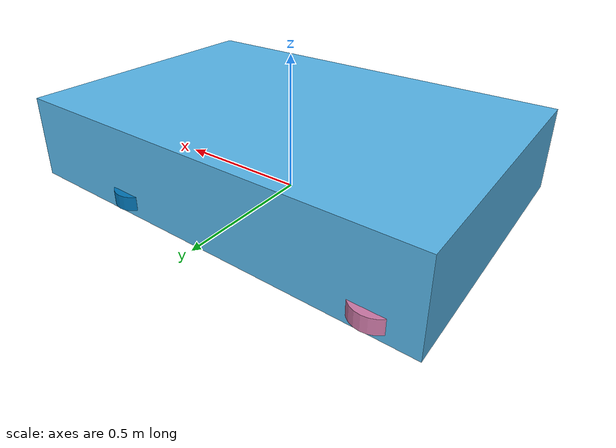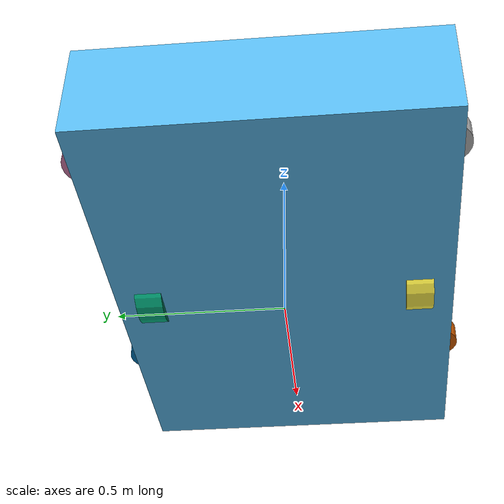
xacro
<?xml version="1.0"?>
<robot xmlns:xacro="http://www.ros.org/wiki/xacro"
       name="amr">

  <!-- Phase 2.1 / 2.2 physical dimensions -->
  <xacro:property name="chassis_length" value="1.500"/>
  <xacro:property name="chassis_width"  value="1.000"/>
  <xacro:property name="chassis_height" value="0.300"/>
  <xacro:property name="ground_clearance" value="0.025"/>

  <!-- Drive wheel dimensions -->
  <xacro:property name="wheel_radius" value="0.125"/>
  <xacro:property name="wheel_width" value="0.080"/>
  <xacro:property name="wheel_separation" value="0.800"/>
  <xacro:property name="drive_axle_x" value="0.000"/>

<!-- Primary robot reference frame -->
  <!-- Origin: drive axle centerline, ground reference -->
  <link name="base_link"/>

  <!-- Main chassis -->
  <link name="chassis_link">
    <inertial>
  <origin xyz="0.008929 0 0.166295"
          rpy="0 0 0"/>
  <mass value="112.0"/>
  <inertia
    ixx="5.445471"
    ixy="0.0"
    ixz="-0.252455"
    iyy="11.390709"
    iyz="0.0"
    izz="15.111905"/>
</inertial>
    <visual>
      <origin xyz="0 0 ${ground_clearance + chassis_height / 2}"
              rpy="0 0 0"/>
      <geometry>
        <box size="${chassis_length}
                   ${chassis_width}
                   ${chassis_height}"/>
      </geometry>
    </visual>

    <collision>
      <origin xyz="0 0 ${ground_clearance + chassis_height / 2}"
              rpy="0 0 0"/>
      <geometry>
        <box size="${chassis_length}
                   ${chassis_width}
                   ${chassis_height}"/>
      </geometry>
    </collision>
  </link>

  <!-- Fixed base-to-chassis connection -->
  <joint name="base_to_chassis"
         type="fixed">
    <parent link="base_link"/>
    <child link="chassis_link"/>
    <origin xyz="0 0 0" rpy="0 0 0"/>
  </joint>

  <!-- Left drive wheel -->
  <link name="left_wheel_link">
     <inertial>
  <origin xyz="0 0 0"
          rpy="0 0 0"/>
  <mass value="15.0"/>
  <inertia
    ixx="0.066594"
    ixy="0.0"
    ixz="0.0"
    iyy="0.117188"
    iyz="0.0"
    izz="0.066594"/>
</inertial>
    <visual>
      <origin xyz="0 0 0" rpy="1.57079632679 0 0"/>
      <geometry>
        <cylinder radius="${wheel_radius}"
                  length="${wheel_width}"/>
      </geometry>
    </visual>

    <collision>
      <origin xyz="0 0 0" rpy="0 0 0"/>
      <geometry>
        <sphere radius="${wheel_radius}"/>
      </geometry>
    </collision>
  </link>

  <joint name="left_wheel_joint"
         type="continuous">
    <parent link="base_link"/>
    <child link="left_wheel_link"/>
    <origin xyz="${drive_axle_x}
                 ${wheel_separation / 2}
                 ${wheel_radius}"
            rpy="0 0 0"/>
    <axis xyz="0 1 0"/>
  </joint>

  <!-- Right drive wheel -->
  <link name="right_wheel_link">
    <inertial>
  <origin xyz="0 0 0"
          rpy="0 0 0"/>
  <mass value="15.0"/>
  <inertia
    ixx="0.066594"
    ixy="0.0"
    ixz="0.0"
    iyy="0.117188"
    iyz="0.0"
    izz="0.066594"/>
</inertial>
    <visual>
      <origin xyz="0 0 0" rpy="1.57079632679 0 0"/>
      <geometry>
        <cylinder radius="${wheel_radius}"
                  length="${wheel_width}"/>
      </geometry>
    </visual>

    <collision>
      <origin xyz="0 0 0" rpy="0 0 0"/>
      <geometry>
        <sphere radius="${wheel_radius}"/>
      </geometry>
    </collision>
  </link>

  <joint name="right_wheel_joint"
         type="continuous">
    <parent link="base_link"/>
    <child link="right_wheel_link"/>
    <origin xyz="${drive_axle_x}
                 ${-wheel_separation / 2}
                 ${wheel_radius}"
            rpy="0 0 0"/>
    <axis xyz="0 1 0"/>
  </joint>

    <!-- Four fixed support casters -->
  <xacro:property name="caster_radius" value="0.075"/>
  <xacro:property name="caster_width" value="0.050"/>

  <!-- Front-left caster -->
  <link name="front_left_caster_link">
   <inertial>
  <origin xyz="0 0 0"
          rpy="0 0 0"/>
  <mass value="2.0"/>
  <inertia
    ixx="0.003229"
    ixy="0.0"
    ixz="0.0"
    iyy="0.003229"
    iyz="0.0"
    izz="0.005625"/>
</inertial>
    <visual>
      <origin xyz="0 0 0" rpy="0 0 0"/>
      <geometry>
        <cylinder radius="${caster_radius}"
                   length="${caster_width}"/>
      </geometry>
    </visual>
    <!-- Sphere touching the floor (link origin is caster_radius above it).
         Zero friction below makes it act like a free swivel caster. -->
    <collision>
      <origin xyz="0 0 0" rpy="0 0 0"/>
      <geometry>
        <sphere radius="${caster_radius}"/>
      </geometry>
    </collision>
  </link>

  <joint name="front_left_caster_joint"
         type="fixed">
    <parent link="base_link"/>
    <child link="front_left_caster_link"/>
    <origin xyz="0.300 0.450 ${caster_radius}"
            rpy="0 0 0"/>
  </joint>

  <!-- Front-right caster -->
  <link name="front_right_caster_link">
    <inertial>
  <origin xyz="0 0 0"
          rpy="0 0 0"/>
  <mass value="2.0"/>
  <inertia
    ixx="0.003229"
    ixy="0.0"
    ixz="0.0"
    iyy="0.003229"
    iyz="0.0"
    izz="0.005625"/>
</inertial>
    <visual>
      <origin xyz="0 0 0" rpy="0 0 0"/>
      <geometry>
        <cylinder radius="${caster_radius}"
                   length="${caster_width}"/>
      </geometry>
    </visual>
    <!-- Sphere touching the floor (link origin is caster_radius above it).
         Zero friction below makes it act like a free swivel caster. -->
    <collision>
      <origin xyz="0 0 0" rpy="0 0 0"/>
      <geometry>
        <sphere radius="${caster_radius}"/>
      </geometry>
    </collision>
  </link>

  <joint name="front_right_caster_joint"
         type="fixed">
    <parent link="base_link"/>
    <child link="front_right_caster_link"/>
    <origin xyz="0.300 -0.450 ${caster_radius}"
            rpy="0 0 0"/>
  </joint>

  <!-- Rear-left caster -->
  <link name="rear_left_caster_link">
    <inertial>
  <origin xyz="0 0 0"
          rpy="0 0 0"/>
  <mass value="2.0"/>
  <inertia
    ixx="0.003229"
    ixy="0.0"
    ixz="0.0"
    iyy="0.003229"
    iyz="0.0"
    izz="0.005625"/>
</inertial>
    <visual>
      <origin xyz="0 0 0" rpy="0 0 0"/>
      <geometry>
        <cylinder radius="${caster_radius}"
                   length="${caster_width}"/>
      </geometry>
    </visual>
    <!-- Sphere touching the floor (link origin is caster_radius above it).
         Zero friction below makes it act like a free swivel caster. -->
    <collision>
      <origin xyz="0 0 0" rpy="0 0 0"/>
      <geometry>
        <sphere radius="${caster_radius}"/>
      </geometry>
    </collision>
  </link>

  <joint name="rear_left_caster_joint"
         type="fixed">
    <parent link="base_link"/>
    <child link="rear_left_caster_link"/>
    <origin xyz="-0.600 0.450 ${caster_radius}"
            rpy="0 0 0"/>
  </joint>

  <!-- Rear-right caster -->
  <link name="rear_right_caster_link">
    <inertial>
  <origin xyz="0 0 0"
          rpy="0 0 0"/>
  <mass value="2.0"/>
  <inertia
    ixx="0.003229"
    ixy="0.0"
    ixz="0.0"
    iyy="0.003229"
    iyz="0.0"
    izz="0.005625"/>
</inertial>
    <visual>
      <origin xyz="0 0 0" rpy="0 0 0"/>
      <geometry>
        <cylinder radius="${caster_radius}"
                   length="${caster_width}"/>
      </geometry>
    </visual>
    <!-- Sphere touching the floor (link origin is caster_radius above it).
         Zero friction below makes it act like a free swivel caster. -->
    <collision>
      <origin xyz="0 0 0" rpy="0 0 0"/>
      <geometry>
        <sphere radius="${caster_radius}"/>
      </geometry>
    </collision>
  </link>

  <joint name="rear_right_caster_joint"
         type="fixed">
    <parent link="base_link"/>
    <child link="rear_right_caster_link"/>
    <origin xyz="-0.600 -0.450 ${caster_radius}"
            rpy="0 0 0"/>
   </joint>

               <!-- Front LiDAR -->
  <!-- Casters: frictionless contact -->
  <gazebo reference="front_left_caster_link">
    <mu1>0.0</mu1>
    <mu2>0.0</mu2>
  </gazebo>
  <gazebo reference="front_right_caster_link">
    <mu1>0.0</mu1>
    <mu2>0.0</mu2>
  </gazebo>
  <gazebo reference="rear_left_caster_link">
    <mu1>0.0</mu1>
    <mu2>0.0</mu2>
  </gazebo>
  <gazebo reference="rear_right_caster_link">
    <mu1>0.0</mu1>
    <mu2>0.0</mu2>
  </gazebo>

  <link name="front_lidar_link"/>

  <joint name="front_lidar_joint"
         type="fixed">
    <parent link="base_link"/>
    <child link="front_lidar_link"/>
    <origin xyz="0.700 0.000 0.280"
            rpy="0 0 0"/>
  </joint>

  <gazebo reference="front_lidar_link">
    <sensor name="front_lidar" type="gpu_lidar">
      <gz_frame_id>front_lidar_link</gz_frame_id>
      <topic>front_lidar</topic>
      <update_rate>10</update_rate>

      <lidar>
        <scan>
          <horizontal>
            <samples>540</samples>
            <resolution>1</resolution>
            <min_angle>-2.356194</min_angle>
            <max_angle>2.356194</max_angle>
          </horizontal>

          <vertical>
            <samples>1</samples>
            <resolution>1</resolution>
            <min_angle>0</min_angle>
            <max_angle>0</max_angle>
          </vertical>
        </scan>

        <range>
          <min>0.10</min>
          <max>12.0</max>
          <resolution>0.01</resolution>
        </range>
      </lidar>

      <alwaysOn>1</alwaysOn>
      <visualize>true</visualize>
    </sensor>
  </gazebo>
       <!-- Rear LiDAR -->
  <link name="rear_lidar_link"/>

  <joint name="rear_lidar_joint"
         type="fixed">
    <parent link="base_link"/>
    <child link="rear_lidar_link"/>
    <origin xyz="-0.700 0.000 0.280"
            rpy="0 0 3.14159265359"/>
  </joint>

  <gazebo reference="rear_lidar_link">
    <sensor name="rear_lidar" type="gpu_lidar">
      <gz_frame_id>rear_lidar_link</gz_frame_id>
      <topic>rear_lidar</topic>
      <update_rate>10</update_rate>

      <lidar>
        <scan>
          <horizontal>
            <samples>540</samples>
            <resolution>1</resolution>
            <min_angle>-2.356194</min_angle>
            <max_angle>2.356194</max_angle>
          </horizontal>

          <vertical>
            <samples>1</samples>
            <resolution>1</resolution>
            <min_angle>0</min_angle>
            <max_angle>0</max_angle>
          </vertical>
        </scan>

        <range>
          <min>0.10</min>
          <max>12.0</max>
          <resolution>0.01</resolution>
        </range>
      </lidar>

      <alwaysOn>1</alwaysOn>
      <visualize>true</visualize>
    </sensor>
  </gazebo>
    <!-- IMU -->
<link name="imu_link"/>

<joint name="imu_joint"
       type="fixed">
  <parent link="base_link"/>
  <child link="imu_link"/>
  <origin xyz="0 0 0.350"
          rpy="0 0 0"/>
</joint>

<gazebo reference="base_link">
  <sensor name="imu_sensor" type="imu">
    <topic>imu</topic>
    <gz_frame_id>imu_link</gz_frame_id>
    <update_rate>100</update_rate>
    <visualize>true</visualize>
    <pose>0 0 0.350 0 0 0</pose>
    <imu>
      <angular_velocity>
        <x>
          <noise type="gaussian">
            <mean>0.0</mean>
            <stddev>0.01</stddev>
          </noise>
        </x>
        <y>
          <noise type="gaussian">
            <mean>0.0</mean>
            <stddev>0.01</stddev>
          </noise>
        </y>
        <z>
          <noise type="gaussian">
            <mean>0.0</mean>
            <stddev>0.01</stddev>
          </noise>
        </z>
      </angular_velocity>
    </imu>
  </sensor>
</gazebo>
    <!-- Front-Left ToF -->
<link name="tof_front_left_link"/>

<joint name="tof_front_left_joint"
       type="fixed">
  <parent link="base_link"/>
  <child link="tof_front_left_link"/>
  <origin xyz="0.650 0.400 0.150"
          rpy="0 0 0.6"/>
</joint>

<gazebo reference="tof_front_left_link">
  <sensor name="tof_front_left" type="gpu_lidar">
    <gz_frame_id>tof_front_left_link</gz_frame_id>
    <topic>tof_front_left</topic>
    <update_rate>20</update_rate>

    <lidar>
      <scan>
        <horizontal>
          <samples>5</samples>
          <resolution>1</resolution>
          <min_angle>-0.218166</min_angle>
          <max_angle>0.218166</max_angle>
        </horizontal>

        <vertical>
          <samples>1</samples>
          <resolution>1</resolution>
          <min_angle>0</min_angle>
          <max_angle>0</max_angle>
        </vertical>
      </scan>

      <range>
        <min>0.02</min>
        <max>3.0</max>
        <resolution>0.01</resolution>
      </range>
    </lidar>

    <visualize>true</visualize>
  </sensor>
</gazebo>

    <!-- Front-Right ToF -->
    <link name="tof_front_right_link"/>

    <joint name="tof_front_right_joint" type="fixed">
      <parent link="base_link"/>
      <child link="tof_front_right_link"/>
      <origin xyz="0.650 -0.400 0.150" rpy="0 0 -0.6"/>
    </joint>

    <gazebo reference="tof_front_right_link">
      <sensor name="tof_front_right" type="gpu_lidar">
        <gz_frame_id>tof_front_right_link</gz_frame_id>
        <topic>tof_front_right</topic>
        <update_rate>20</update_rate>

        <lidar>
          <scan>
            <horizontal>
              <samples>5</samples>
              <resolution>1</resolution>
              <min_angle>-0.218166</min_angle>
              <max_angle>0.218166</max_angle>
            </horizontal>

            <vertical>
              <samples>1</samples>
              <resolution>1</resolution>
              <min_angle>0</min_angle>
              <max_angle>0</max_angle>
            </vertical>
          </scan>

          <range>
            <min>0.02</min>
            <max>3.0</max>
            <resolution>0.01</resolution>
          </range>
        </lidar>

        <visualize>true</visualize>
      </sensor>
    </gazebo>

    <!-- Rear-Left ToF -->
    <link name="tof_rear_left_link"/>

    <joint name="tof_rear_left_joint" type="fixed">
      <parent link="base_link"/>
      <child link="tof_rear_left_link"/>
      <origin xyz="-0.600 0.400 0.150" rpy="0 0 0.6"/>
    </joint>

    <gazebo reference="tof_rear_left_link">
      <sensor name="tof_rear_left" type="gpu_lidar">
        <gz_frame_id>tof_rear_left_link</gz_frame_id>
        <topic>tof_rear_left</topic>
        <update_rate>20</update_rate>

        <lidar>
          <scan>
            <horizontal>
              <samples>5</samples>
              <resolution>1</resolution>
              <min_angle>-0.218166</min_angle>
              <max_angle>0.218166</max_angle>
            </horizontal>

            <vertical>
              <samples>1</samples>
              <resolution>1</resolution>
              <min_angle>0</min_angle>
              <max_angle>0</max_angle>
            </vertical>
          </scan>

          <range>
            <min>0.02</min>
            <max>3.0</max>
            <resolution>0.01</resolution>
          </range>
        </lidar>

        <visualize>true</visualize>
      </sensor>
    </gazebo>

    <!-- Rear-Right ToF -->
    <link name="tof_rear_right_link"/>

    <joint name="tof_rear_right_joint" type="fixed">
      <parent link="base_link"/>
      <child link="tof_rear_right_link"/>
      <origin xyz="-0.600 -0.400 0.150" rpy="0 0 -0.6"/>
    </joint>

    <gazebo reference="tof_rear_right_link">
      <sensor name="tof_rear_right" type="gpu_lidar">
        <gz_frame_id>tof_rear_right_link</gz_frame_id>
        <topic>tof_rear_right</topic>
        <update_rate>20</update_rate>

        <lidar>
          <scan>
            <horizontal>
              <samples>5</samples>
              <resolution>1</resolution>
              <min_angle>-0.218166</min_angle>
              <max_angle>0.218166</max_angle>
            </horizontal>

            <vertical>
              <samples>1</samples>
              <resolution>1</resolution>
              <min_angle>0</min_angle>
              <max_angle>0</max_angle>
            </vertical>
          </scan>

          <range>
            <min>0.02</min>
            <max>3.0</max>
            <resolution>0.01</resolution>
          </range>
        </lidar>

        <visualize>true</visualize>
      </sensor>
    </gazebo>

<ros2_control name="GazeboSimSystem" type="system">
    <hardware>
      <plugin>gz_ros2_control/GazeboSimSystem</plugin>
    </hardware>

    <joint name="left_wheel_joint">
      <command_interface name="velocity"/>
      <state_interface name="position"/>
      <state_interface name="velocity"/>
    </joint>

    <joint name="right_wheel_joint">
      <command_interface name="velocity"/>
      <state_interface name="position"/>
      <state_interface name="velocity"/>
    </joint>
  </ros2_control>

    <gazebo>
  <plugin filename="libgz_ros2_control-system.so"
          name="gz_ros2_control::GazeboSimROS2ControlPlugin">
    <parameters>$(find amr_description)/config/controllers.yaml</parameters>
  </plugin>
</gazebo>

</robot>
